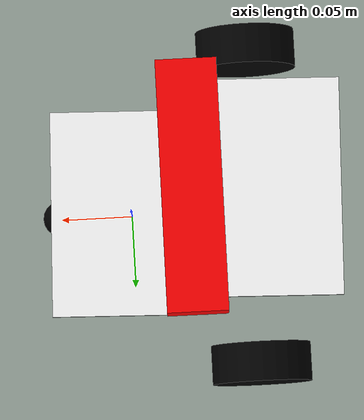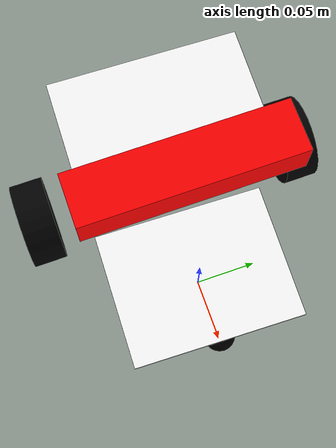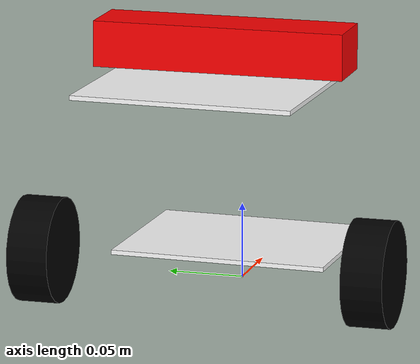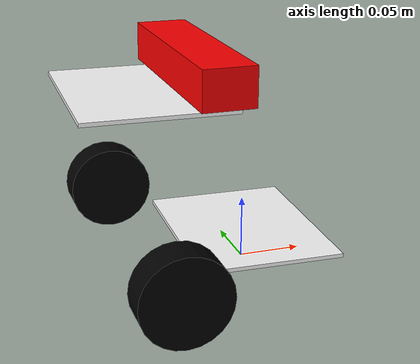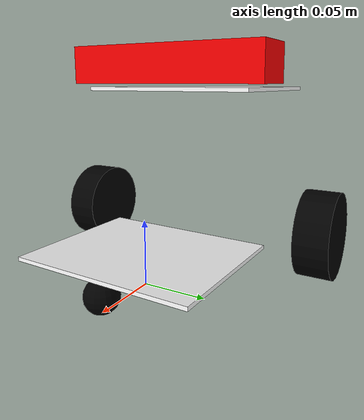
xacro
<?xml version="1.0"?>

<robot xmlns:xacro="http://www.ros.org/wiki/xacro"
 	xmlns:sensor="http://playerstage.sourceforge.net/gazebo/xmlschema/#sensor"
    	xmlns:controller="http://playerstage.sourceforge.net/gazebo/xmlschema/#controller"
    	xmlns:interface="http://playerstage.sourceforge.net/gazebo/xmlschema/#interface"
	name="robot1_xacro">

  <xacro:property name="length_wheel" value="0.027" />
  <xacro:property name="radius_wheel" value="0.0345" />
  <xacro:property name="camera_name" value="camera" />
  <xacro:property name="frame_name" value="camera_link" />
  <xacro:macro name="default_inertial" params="mass">
               <inertial>
                       <mass value="${mass}" />
                       <inertia ixx="1.0" ixy="0.0" ixz="0.0"
                                iyy="1.0" iyz="0.0"
                                izz="1.0" />
               </inertial>
	</xacro:macro>

  <link name="base_footprint">
   		<visual>
			<geometry>
      				<box size="0.001 0.001 0.001"/>
     			</geometry>
			<origin rpy="0 0 0" xyz="0 0 0"/>
   		</visual>
 	</link>

  <!-- include gazebo setting and gazebo-plugin -->
  <xacro:include filename="robot.gazebo" />

  <gazebo reference="base_footprint">
		<material>Gazebo/Green</material>
		<turnGravityOff>false</turnGravityOff>
	</gazebo>

  <joint name="base_footprint_joint" type="fixed">
    <origin xyz="0 0 0" />
    <parent link="base_footprint" />
    <child link="base_link" />
  </joint>

  <link name="base_link">
   		<visual>
			<geometry>
      			<box size="0.144 0.113 0.003"/>
     	</geometry>
			<origin rpy="0 0 1.54" xyz="0 0 0.025"/>
			<material name="white">
				<color rgba="1 1 1 1"/>
			</material>
   		</visual>
		<collision>
			<geometry>
       				<box size="0.144 0.113 0.003"/>
			</geometry>
		</collision>
		<xacro:default_inertial mass="1"/>
 	</link>

  <link name="top_board">
   		<visual>
			<geometry>
      			<box size="0.144 0.113 0.003"/>
     	</geometry>
			<origin rpy="0 0 1.54" xyz="-0.042 0 0.073"/>
			<material name="white">
				<color rgba="1 1 1 1"/>
			</material>
   		</visual>
		<collision>
			<geometry>
       				<box size="0.144 0.113 0.003"/>
			</geometry>
		</collision>
		<xacro:default_inertial mass="1"/>
 	</link>

  <link name="wheel_left">
   		<visual>
     			<geometry>
       				<cylinder length="${length_wheel}" radius="${radius_wheel}"/>
     			</geometry>
			<origin rpy="0 0 0" xyz="0 0 0"/>
   			<material name="black">
				<color rgba="0 0 0 1"/>
			</material>
		</visual>
		<collision>
			<geometry>
       				<cylinder length="${length_wheel}" radius="${radius_wheel}"/>
			</geometry>
		</collision>
		<xacro:default_inertial mass="1"/>
 	</link>

  <link name="wheel_right">
   		<visual>
     			<geometry>
       				<cylinder length="${length_wheel}" radius="${radius_wheel}"/>
     			</geometry>
			<origin rpy="0 0 0" xyz="0 0 0"/>
   			<material name="black"/>
   		</visual>
		<collision>
			<geometry>
       				<cylinder length="${length_wheel}" radius="${radius_wheel}"/>
			</geometry>
		</collision>
		<xacro:default_inertial mass="1"/>

 	</link>

  <link name="caster_wheel">
   		<visual>
     			<geometry>
       				<sphere radius="0.0125"/>
     			</geometry>
			<origin rpy="0 0 0" xyz="0 0 0"/>
   			<material name="black"/>
   		</visual>
		<collision>
			<geometry>
       				<cylinder length="${length_wheel}" radius="${radius_wheel}"/>
			</geometry>
		</collision>
		<xacro:default_inertial mass="1"/>

 	</link>

  <!-- Camera -->
  <link name="camera_link">
    <collision>
      <origin xyz="0 0 0" rpy="0 0 0"/>
      <geometry>
        <box size="0.04 0.165 0.03"/>
      </geometry>
    </collision>

    <visual>
      <origin xyz="0 0 0" rpy="0 0 0"/>
      <geometry>
	      <box size="0.04 0.165 0.03"/>
      </geometry>
      <material name="red">
	<color rgba="1 0 0 1"/>
      </material>
    </visual>

    <inertial>
      <mass value="1e-5" />
      <origin xyz="0 0 0" rpy="0 0 0"/>
      <inertia ixx="1e-6" ixy="0" ixz="0" iyy="1e-6" iyz="0" izz="1e-6" />
    </inertial>
  </link>

  <joint name="base_to_wheel_left" type="continuous">
    <parent link="base_link"/>
    <child link="wheel_left"/>
    <axis xyz="0 0 1" />
    <origin rpy="1.57 0 0" xyz="-0.085 0.11 0.0325"/>
  </joint>

  <joint name="base_to_wheel_right" type="continuous">
    <parent link="base_link"/>
    <child link="wheel_right"/>
    <axis xyz="0 0 1" />
    <origin rpy="1.57 0 0" xyz="-0.085 -0.11 0.0325"/>
 </joint>

  <joint name="base_to_caster_wheel" type="continuous">
    <parent link="base_link"/>
    <axis xyz="0 0 1" />
    <child link="caster_wheel"/>
    <origin rpy="0 0 0" xyz="0.05 0.00 0.0125"/>
  </joint>
   <!-- Camera joint -->
   <joint name="base_to_camera_link" type="fixed">
     <axis xyz="0 1 0" />
     <origin rpy="0 0 0" xyz="-0.042 0 0.165"/>
     <parent link="base_link"/>
     <child link="camera_link"/>
   </joint>

   <joint name="base_to_top_board" type="fixed">
     <axis xyz="0 1 0" />
     <origin rpy="0 0 0" xyz="-0.042 0 0.073"/>
     <parent link="base_link"/>
     <child link="top_board"/>
   </joint>

   <!-- Drive controller -->
 <gazebo>
   <plugin name="differential_drive_controller" filename="libgazebo_ros_diff_drive.so">
     <alwaysOn>true</alwaysOn>
     <publishWheelTF>true</publishWheelTF>
     <publishWheelJointState>true</publishWheelJointState>
     <wheelAcceleration>0</wheelAcceleration>
     <odometrySource>1</odometrySource>
     <updateRate>100.0</updateRate>
     <robotNamespace>/</robotNamespace>
     <leftJoint>base_to_wheel_left</leftJoint>
     <rightJoint>base_to_wheel_right</rightJoint>
     <wheelSeparation>0.193</wheelSeparation>
     <wheelDiameter>0.065</wheelDiameter>
     <robotBaseFrame>base_footprint</robotBaseFrame>
     <wheelTorque>1</wheelTorque>
     <topicName>cmd_vel</topicName>
     <commandTopic>cmd_vel</commandTopic>
     <odometryTopic>odom</odometryTopic>
     <odometryFrame>odom</odometryFrame>
     <broadcastTF>true</broadcastTF>
     <publishTf>1</publishTf>
   </plugin>
  </gazebo>

  <gazebo>
  <plugin name="camera_link_controller" filename="libgazebo_ros_openni_kinect.so">
    <baseline>0.2</baseline>
    <alwaysOn>true</alwaysOn>
    <updateRate>1.0</updateRate>
    <cameraName>${camera_name}_ir</cameraName>
    <imageTopicName>/${camera_name}/depth/image_raw</imageTopicName>
    <cameraInfoTopicName>/${camera_name}/depth/camera_info</cameraInfoTopicName>
    <depthImageTopicName>/${camera_name}/depth/image_raw</depthImageTopicName>
    <depthImageInfoTopicName>/${camera_name}/depth/camera_info</depthImageInfoTopicName>
    <pointCloudTopicName>/${camera_name}/depth/points</pointCloudTopicName>
    <frameName>${frame_name}</frameName>
    <pointCloudCutoff>0.5</pointCloudCutoff>
    <distortionK1>0.00000001</distortionK1>
    <distortionK2>0.00000001</distortionK2>
    <distortionK3>0.00000001</distortionK3>
    <distortionT1>0.00000001</distortionT1>
    <distortionT2>0.00000001</distortionT2>
    <CxPrime>0</CxPrime>
    <Cx>0</Cx>
    <Cy>0</Cy>
    <focalLength>0</focalLength>
    <hackBaseline>0</hackBaseline>
  </plugin>
  </gazebo>

</robot>
